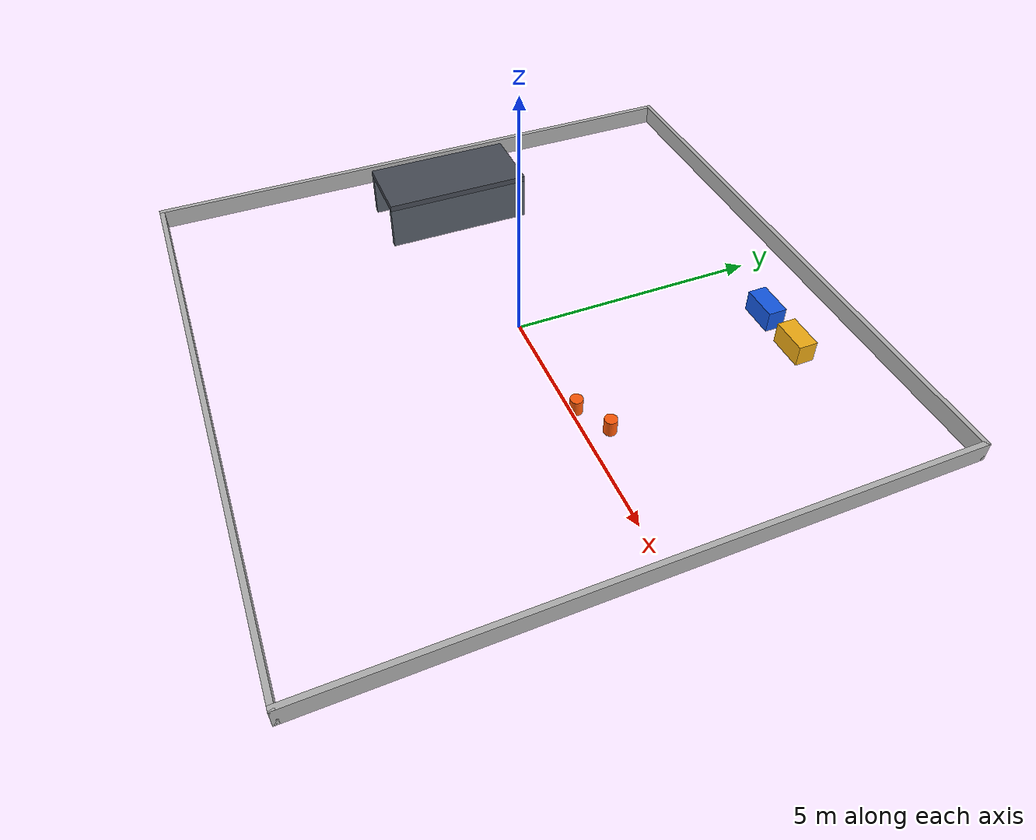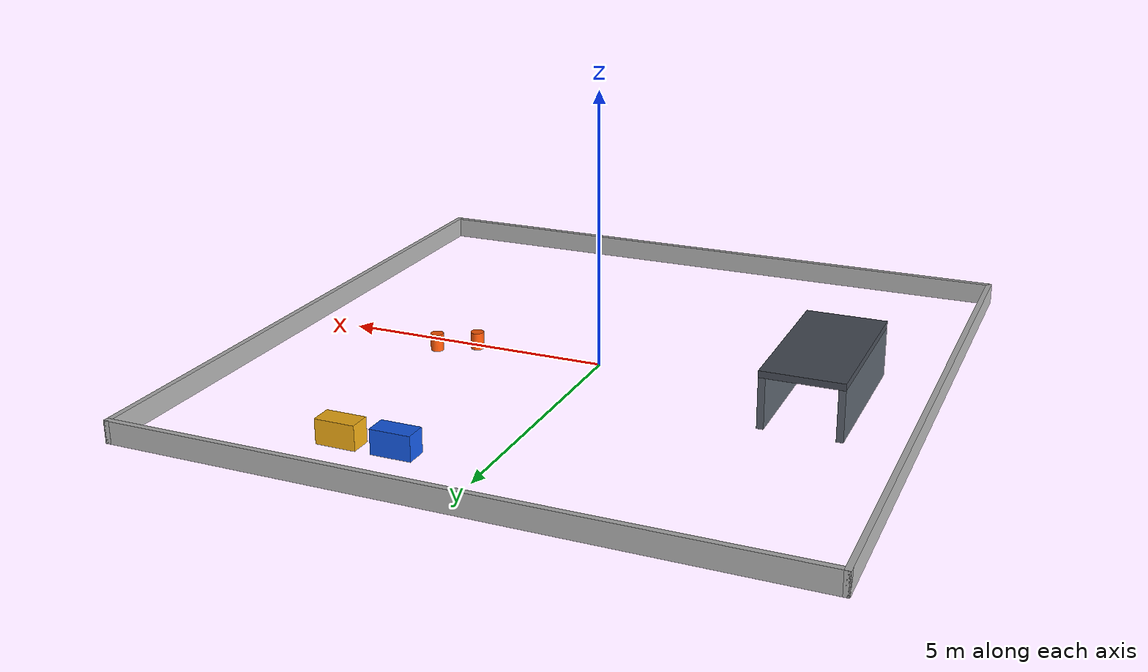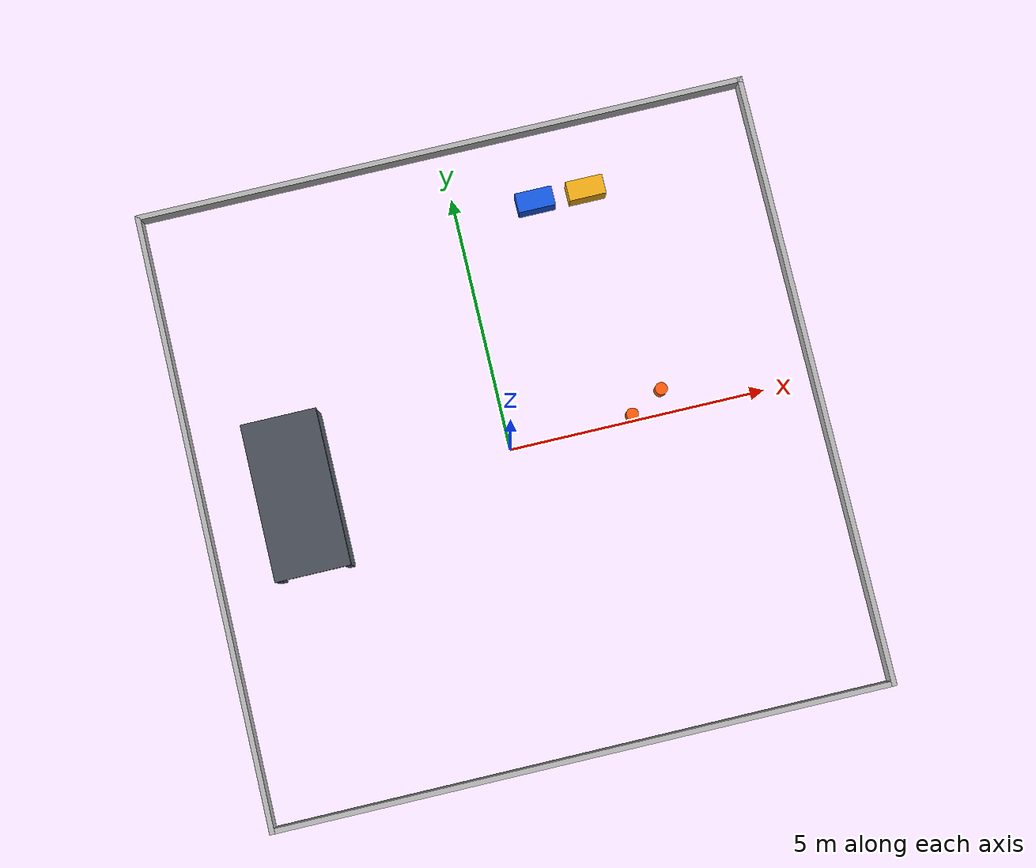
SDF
<sdf version="1.6">
 <world name="omnifleet_a2_traffic_sandbox">
  <physics type="ode">
   <max_step_size>0.002</max_step_size>
   <real_time_update_rate>500</real_time_update_rate>
   <real_time_factor>1.0</real_time_factor>
   <ode><solver><type>quick</type><iters>50</iters></solver></ode>
  </physics>
  <gravity>0 0 -9.80665</gravity>
  <scene>
   <ambient>0.55 0.55 0.55 1</ambient>
   <background>0.72 0.82 0.92 1</background>
   <shadows>true</shadows>
  </scene>
  <light type="directional" name="sun">
   <pose>0 0 12 0 0 0</pose>
   <diffuse>0.9 0.9 0.9 1</diffuse>
   <specular>0.2 0.2 0.2 1</specular>
   <direction>-0.4 0.2 -0.9</direction>
  </light>
  <model name="traffic_tunnel_structure">
   <static>true</static>
   <link name="link">
    <collision name="left_wall">
     <pose>-0.66 0 0.45 0 0 0</pose>
     <geometry><box><size>0.12 3.0 0.9</size></box></geometry>
    </collision>
    <collision name="right_wall">
     <pose>0.66 0 0.45 0 0 0</pose>
     <geometry><box><size>0.12 3.0 0.9</size></box></geometry>
    </collision>
    <collision name="roof">
     <pose>0 0 0.96 0 0 0</pose>
     <geometry><box><size>1.44 3.0 0.12</size></box></geometry>
    </collision>
    <visual name="left_wall_visual">
     <pose>-0.66 0 0.45 0 0 0</pose>
     <geometry><box><size>0.12 3.0 0.9</size></box></geometry>
     <material><ambient>0.25 0.28 0.32 1</ambient><diffuse>0.35 0.38 0.42 1</diffuse></material>
    </visual>
    <visual name="right_wall_visual">
     <pose>0.66 0 0.45 0 0 0</pose>
     <geometry><box><size>0.12 3.0 0.9</size></box></geometry>
     <material><ambient>0.25 0.28 0.32 1</ambient><diffuse>0.35 0.38 0.42 1</diffuse></material>
    </visual>
    <visual name="roof_visual">
     <pose>0 0 0.96 0 0 0</pose>
     <geometry><box><size>1.44 3.0 0.12</size></box></geometry>
     <material><ambient>0.18 0.20 0.24 1</ambient><diffuse>0.28 0.30 0.34 1</diffuse></material>
    </visual>
   </link>
   <pose>-4.1 0 0 0 0 0</pose>
  </model>
  <model name="parked_vehicle_blue">
   <static>true</static>
   <pose>1.55 4.55 0.22 0 0 0</pose>
   <link name="link">
    <collision name="collision"><geometry><box><size>0.72 0.38 0.44</size></box></geometry></collision>
    <visual name="visual">
     <geometry><box><size>0.72 0.38 0.44</size></box></geometry>
     <material><ambient>0.05 0.25 0.75 1</ambient><diffuse>0.08 0.35 0.9 1</diffuse></material>
    </visual>
   </link>
  </model>
  <model name="parked_vehicle_yellow">
   <static>true</static>
   <pose>2.55 4.55 0.22 0 0 0</pose>
   <link name="link">
    <collision name="collision"><geometry><box><size>0.72 0.38 0.44</size></box></geometry></collision>
    <visual name="visual">
     <geometry><box><size>0.72 0.38 0.44</size></box></geometry>
     <material><ambient>0.85 0.55 0.05 1</ambient><diffuse>0.95 0.68 0.08 1</diffuse></material>
    </visual>
   </link>
  </model>
  <model name="construction_blocks">
   <static>true</static>
   <pose>2.4 0.1 0 0 0 0</pose>
   <link name="link">
    <collision name="c1">
     <pose>0 0 0.16 0 0 0</pose>
     <geometry><cylinder><radius>0.12</radius><length>0.32</length></cylinder></geometry>
    </collision>
    <collision name="c2">
     <pose>0.65 0.35 0.16 0 0 0</pose>
     <geometry><cylinder><radius>0.12</radius><length>0.32</length></cylinder></geometry>
    </collision>
    <visual name="v1">
     <pose>0 0 0.16 0 0 0</pose>
     <geometry><cylinder><radius>0.12</radius><length>0.32</length></cylinder></geometry>
     <material><ambient>1 0.25 0.02 1</ambient><diffuse>1 0.35 0.03 1</diffuse></material>
    </visual>
    <visual name="v2">
     <pose>0.65 0.35 0.16 0 0 0</pose>
     <geometry><cylinder><radius>0.12</radius><length>0.32</length></cylinder></geometry>
     <material><ambient>1 0.25 0.02 1</ambient><diffuse>1 0.35 0.03 1</diffuse></material>
    </visual>
   </link>
  </model>
  <model name="course_boundary">
   <static>true</static>
   <link name="link">
    <collision name="north">
     <pose>0 5.95 0.2 0 0 0</pose>
     <geometry><box><size>12 0.1 0.4</size></box></geometry>
    </collision>
    <collision name="south">
     <pose>0 -5.95 0.2 0 0 0</pose>
     <geometry><box><size>12 0.1 0.4</size></box></geometry>
    </collision>
    <collision name="east">
     <pose>5.95 0 0.2 0 0 0</pose>
     <geometry><box><size>0.1 12 0.4</size></box></geometry>
    </collision>
    <collision name="west">
     <pose>-5.95 0 0.2 0 0 0</pose>
     <geometry><box><size>0.1 12 0.4</size></box></geometry>
    </collision>
    <visual name="north_v">
     <pose>0 5.95 0.2 0 0 0</pose>
     <geometry><box><size>12 0.1 0.4</size></box></geometry>
     <material><ambient>0.7 0.7 0.7 1</ambient></material>
    </visual>
    <visual name="south_v">
     <pose>0 -5.95 0.2 0 0 0</pose>
     <geometry><box><size>12 0.1 0.4</size></box></geometry>
     <material><ambient>0.7 0.7 0.7 1</ambient></material>
    </visual>
    <visual name="east_v">
     <pose>5.95 0 0.2 0 0 0</pose>
     <geometry><box><size>0.1 12 0.4</size></box></geometry>
     <material><ambient>0.7 0.7 0.7 1</ambient></material>
    </visual>
    <visual name="west_v">
     <pose>-5.95 0 0.2 0 0 0</pose>
     <geometry><box><size>0.1 12 0.4</size></box></geometry>
     <material><ambient>0.7 0.7 0.7 1</ambient></material>
    </visual>
   </link>
  </model>
 </world>
</sdf>
